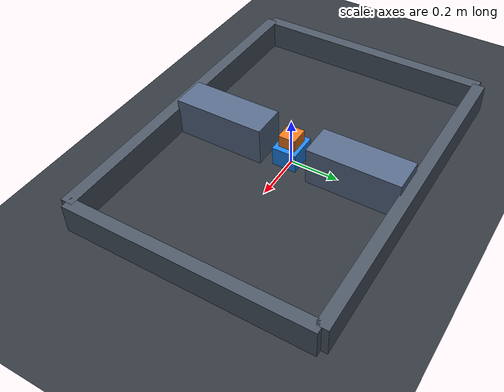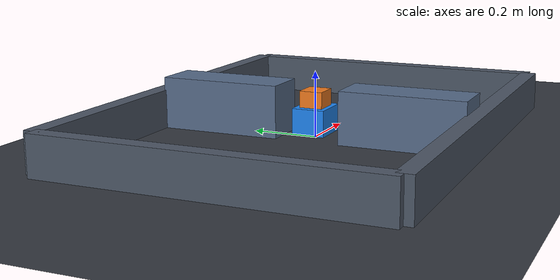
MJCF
<mujoco model="warehouse_navigation">
  <compiler angle="radian" autolimits="true"/>
  <option timestep="0.005" gravity="0 0 -9.81" integrator="implicitfast" solver="Newton" iterations="20" cone="pyramidal"/>
  <size njmax="128" nconmax="48"/>

  <default>
    <joint damping="2.0" armature="0.05" limited="true"/>
    <geom friction="0.9 0.01 0.0001" condim="3" contype="1" conaffinity="1"/>
    <motor ctrllimited="true" ctrlrange="-10 10"/>
  </default>

  <worldbody>
    <light name="key" pos="0 0 2" dir="0 0 -1"/>
    <geom name="warehouse_floor" type="plane" size="1.2 0.8 0.05" rgba="0.20 0.22 0.25 1" friction="1.2 0.02 0.001"/>
    <geom name="north_wall" type="box" pos="0 0.50 0.06" size="0.68 0.025 0.06" rgba="0.30 0.34 0.40 1"/>
    <geom name="south_wall" type="box" pos="0 -0.50 0.06" size="0.68 0.025 0.06" rgba="0.30 0.34 0.40 1"/>
    <geom name="west_wall" type="box" pos="-0.68 0 0.06" size="0.025 0.50 0.06" rgba="0.30 0.34 0.40 1"/>
    <geom name="east_wall" type="box" pos="0.68 0 0.06" size="0.025 0.50 0.06" rgba="0.30 0.34 0.40 1"/>
    <geom name="north_shelf" type="box" pos="0 0.29 0.08" size="0.07 0.19 0.08" rgba="0.34 0.42 0.54 1"/>
    <geom name="south_shelf" type="box" pos="0 -0.29 0.08" size="0.07 0.19 0.08" rgba="0.34 0.42 0.54 1"/>

    <body name="mobile_base" pos="0 0 0.055">
      <joint name="drive_x" type="slide" axis="1 0 0" range="-0.58 0.58"/>
      <joint name="drive_y" type="slide" axis="0 1 0" range="-0.42 0.42"/>
      <geom name="amr_chassis" type="box" size="0.060 0.050 0.040" density="600" rgba="0.12 0.52 0.94 1" friction="1.1 0.02 0.001"/>
      <geom name="cargo" type="box" pos="0 0 0.065" size="0.038 0.035 0.025" rgba="0.94 0.48 0.12 1" contype="0" conaffinity="0"/>
    </body>
  </worldbody>

  <actuator>
    <motor name="drive_x_motor" joint="drive_x" gear="1"/>
    <motor name="drive_y_motor" joint="drive_y" gear="1"/>
  </actuator>
</mujoco>
